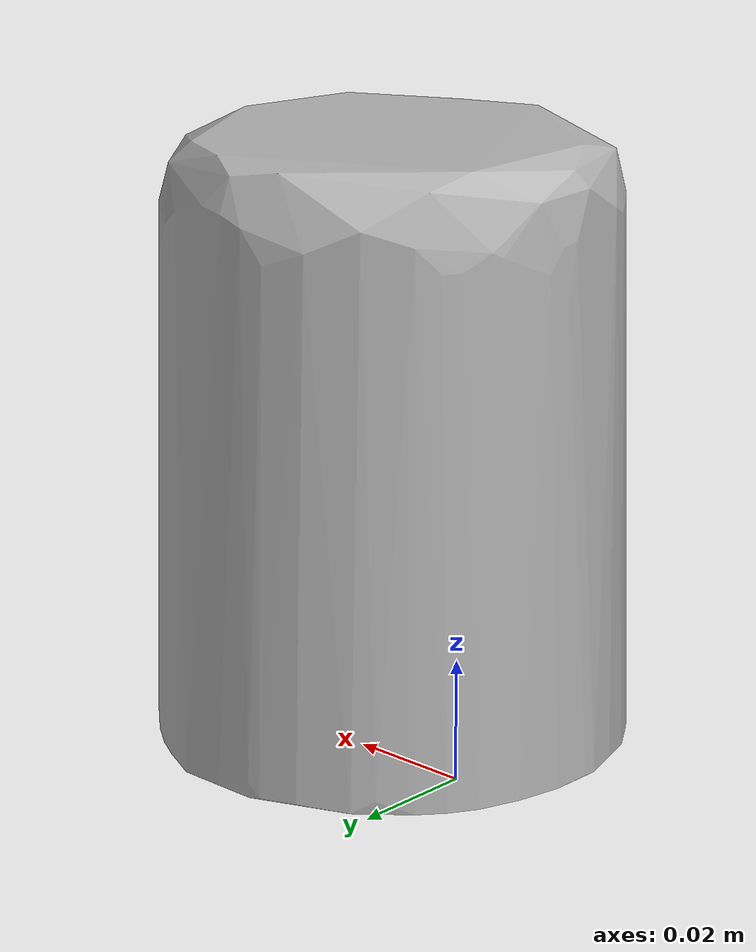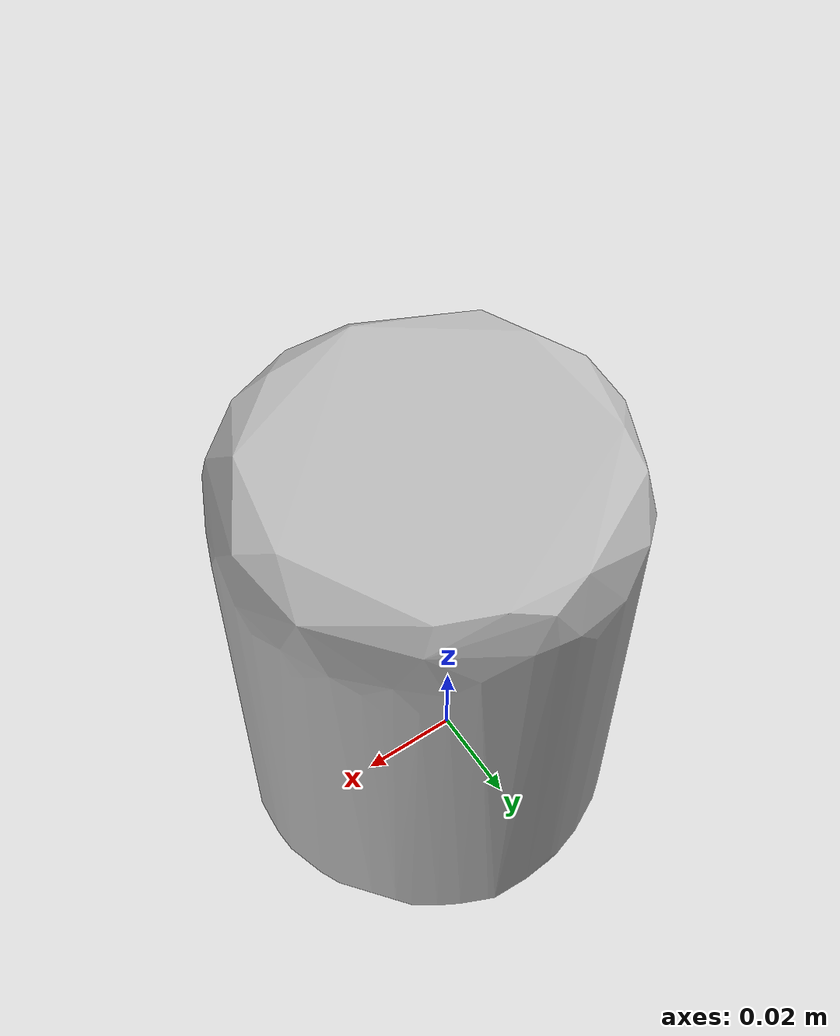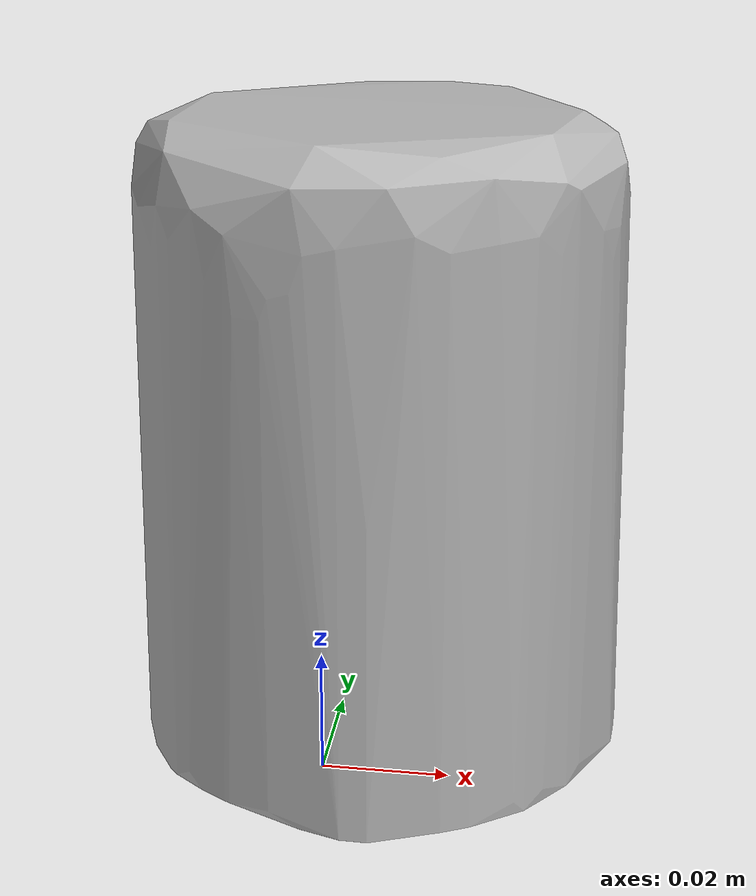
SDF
<?xml version='1.0'?>
<sdf version="1.4">
  <model name="hunts_paste">
    <static>false</static>
    <link name="link">
      <inertial>
        <pose>0.007964684942430519 0.005247840163761383 0.05220396519580966 3.121682182057885 0.013895701810014548 -1.0931415834565983</pose>
        <mass>0.04008326932700585</mass>
        <inertia>
          <ixx>4.384995509003991e-05</ixx>
          <ixy>-1.2729166138859383e-20</ixy>
          <ixz>2.0755563589642794e-21</ixz>
          <iyy>4.341207290443952e-05</iyy>
          <iyz>-1.2995991507899388e-21</iyz>
          <izz>2.6807910717311432e-05</izz>
        </inertia>
      </inertial>
      <collision name="collision">
        <geometry>
          <mesh>
            <!-- Use a downsampled mesh for collisions -->
            <uri>model:///hunts_paste/hunts_paste_250_collision.obj</uri>
	        </mesh>
        </geometry>
        <surface>
      </surface>
      </collision>
      <visual name="visual">
        <geometry>
          <mesh>
            <uri>model:///hunts_paste/optimized_tsdf_texture_mapped_mesh.obj</uri>
	        </mesh>
        </geometry>
        <material>
          <script>
            <uri>model:///hunts_paste/hunts_paste.material</uri>
            <name>hunts_paste</name>
          </script>
        </material>
      </visual>
    </link>
  </model>
</sdf>
